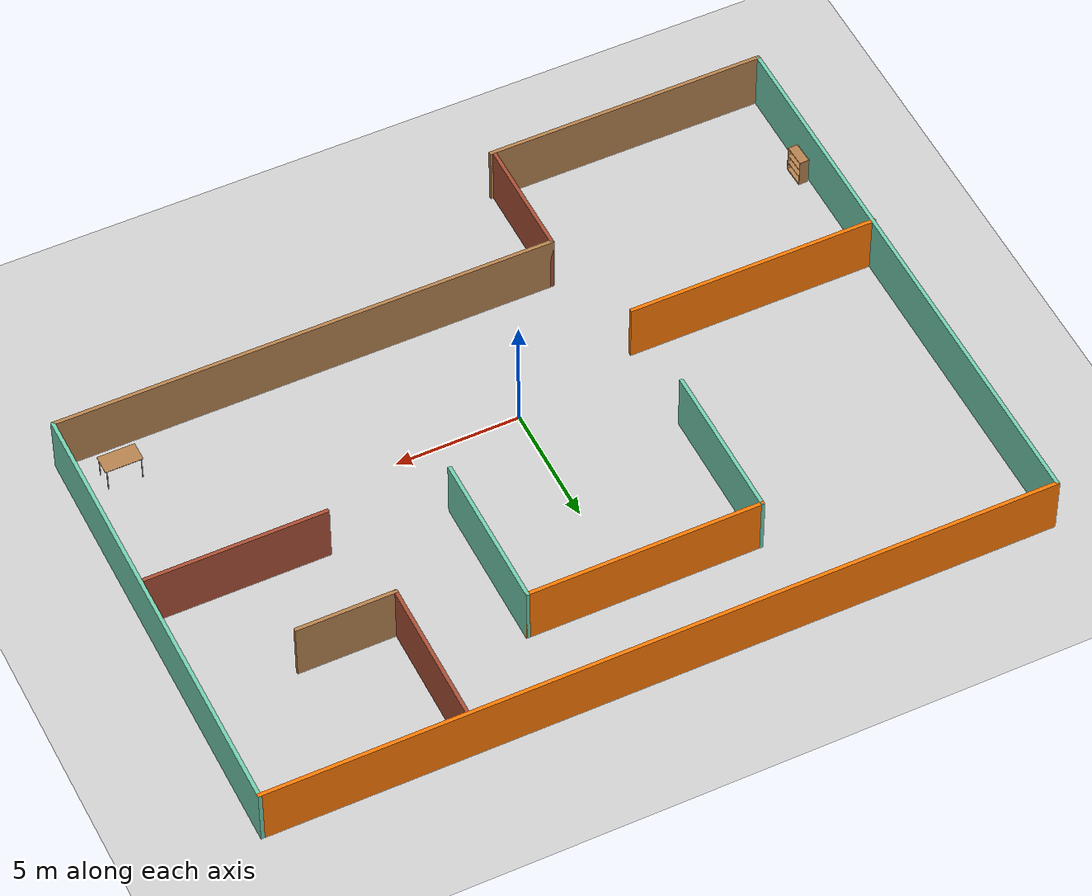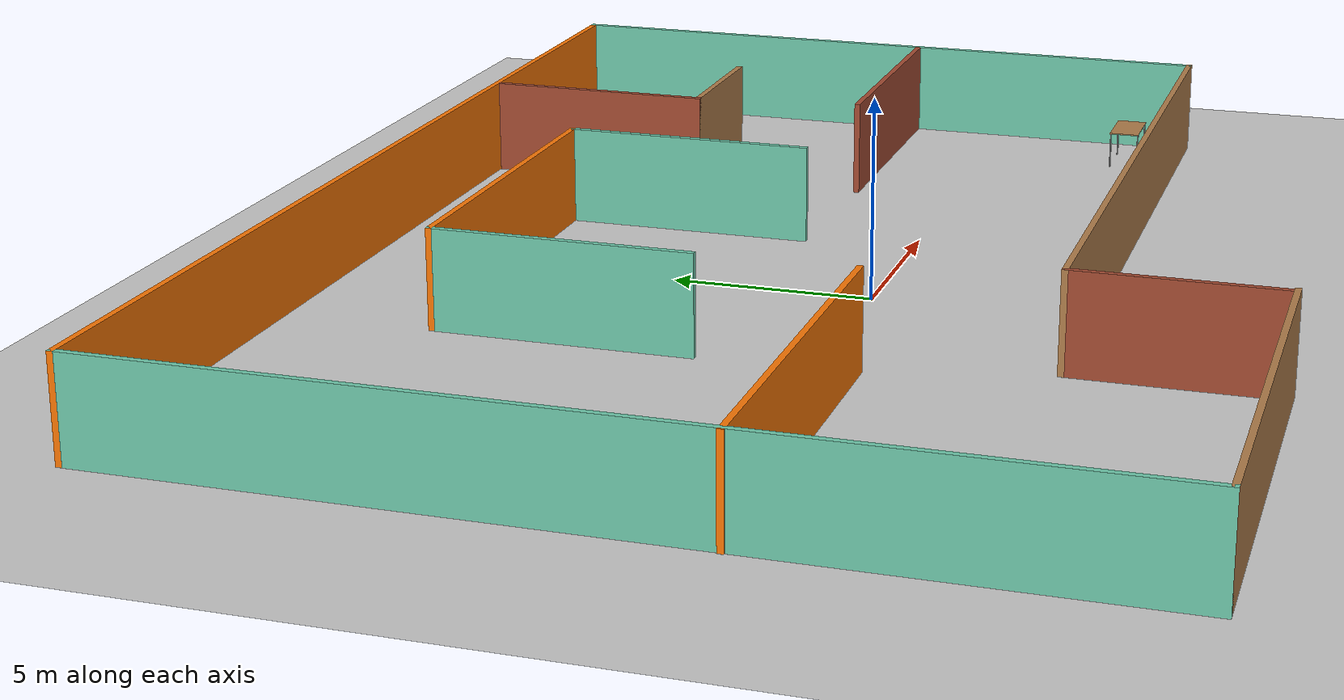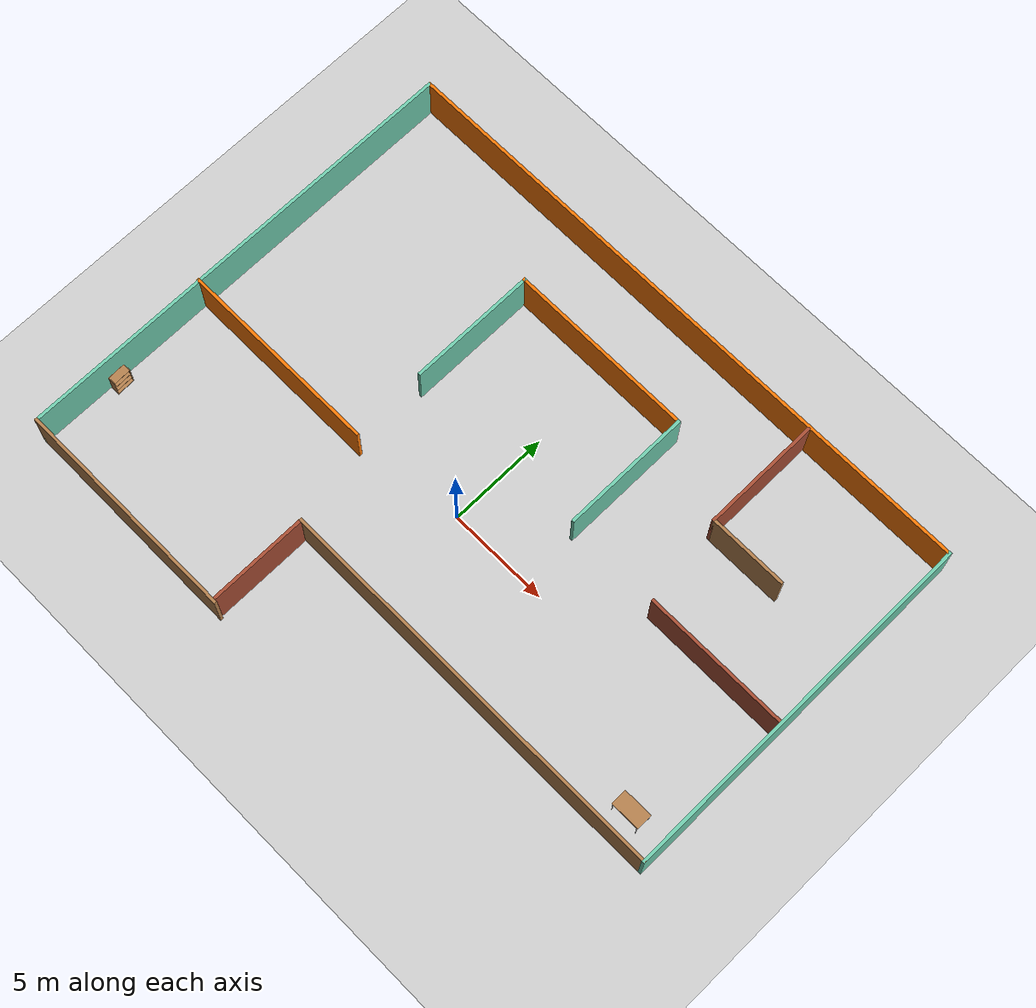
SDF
<sdf version="1.7">
 <world name="default">
  <light name="sun" type="directional">
   <pose>0 0 10 0 -0 0</pose>
   <diffuse>0.8 0.8 0.8 1</diffuse>
   <specular>0.2 0.2 0.2 1</specular>
   <attenuation>
    <range>1000</range>
    <constant>0.9</constant>
    <linear>0.01</linear>
    <quadratic>0.001</quadratic>
   </attenuation>
   <direction>-0.5 0.1 -0.9</direction>
   <spot><inner_angle>0</inner_angle><outer_angle>0</outer_angle><falloff>0</falloff></spot>
  </light>
  <model name="ground_plane">
   <static>1</static>
   <link name="link">
    <collision name="collision">
     <geometry><plane><normal>0 0 1</normal><size>100 100</size></plane></geometry>
     <surface>
      <contact><collide_bitmask>65535</collide_bitmask></contact>
      <friction><ode><mu>100</mu><mu2>50</mu2></ode></friction>
     </surface>
    </collision>
    <visual name="visual">
     <cast_shadows>0</cast_shadows>
     <geometry><plane><normal>0 0 1</normal><size>100 100</size></plane></geometry>
     <material>
      <script><uri>file://media/materials/scripts/gazebo.material</uri><name>Gazebo/Grey</name></script>
     </material>
    </visual>
   </link>
  </model>
  <gravity>0 0 -9.8</gravity>
  <magnetic_field>6e-06 2.3e-05 -4.2e-05</magnetic_field>
  <atmosphere type="adiabatic"/>
  <physics type="ode">
   <max_step_size>0.001</max_step_size>
   <real_time_factor>1</real_time_factor>
   <real_time_update_rate>1000</real_time_update_rate>
  </physics>
  <scene><ambient>0.4 0.4 0.4 1</ambient><background>0.7 0.7 0.7 1</background><shadows>1</shadows></scene>
  <spherical_coordinates>
   <surface_model>EARTH_WGS84</surface_model>
   <latitude_deg>0</latitude_deg>
   <longitude_deg>0</longitude_deg>
   <elevation>0</elevation>
   <heading_deg>0</heading_deg>
  </spherical_coordinates>
  <model name="new5">
   <pose>0.493495 1.35097 0 0 -0 0</pose>
   <link name="Wall_0">
    <collision name="Wall_0_Collision">
     <geometry><box><size>20.25 0.15 2.5</size></box></geometry>
     <pose>0 0 1.25 0 -0 0</pose>
    </collision>
    <visual name="Wall_0_Visual">
     <pose>0 0 1.25 0 -0 0</pose>
     <geometry><box><size>20.25 0.15 2.5</size></box></geometry>
     <material>
      <script><uri>file://media/materials/scripts/gazebo.material</uri><name>Gazebo/Wood</name></script>
      <ambient>1 1 1 1</ambient>
     </material>
     <meta><layer>0</layer></meta>
    </visual>
    <pose>5.64376 -6.675 0 0 -0 0</pose>
   </link>
   <link name="Wall_1">
    <collision name="Wall_1_Collision">
     <geometry><box><size>18.5 0.15 2.5</size></box></geometry>
     <pose>0 0 1.25 0 -0 0</pose>
    </collision>
    <visual name="Wall_1_Visual">
     <pose>0 0 1.25 0 -0 0</pose>
     <geometry><box><size>18.5 0.15 2.5</size></box></geometry>
     <material>
      <script><uri>file://media/materials/scripts/gazebo.material</uri><name>Gazebo/Grey</name></script>
      <ambient>0.435294 0.796078 0.67451 1</ambient>
     </material>
     <meta><layer>0</layer></meta>
    </visual>
    <pose>15.6938 2.5 0 0 -0 1.5708</pose>
   </link>
   <link name="Wall_10">
    <collision name="Wall_10_Collision">
     <geometry><box><size>4 0.15 2.5</size></box></geometry>
     <pose>0 0 1.25 0 -0 0</pose>
    </collision>
    <visual name="Wall_10_Visual">
     <pose>0 0 1.25 0 -0 0</pose>
     <geometry><box><size>4 0.15 2.5</size></box></geometry>
     <material>
      <script><uri>file://media/materials/scripts/gazebo.material</uri><name>Gazebo/Wood</name></script>
      <ambient>1 1 1 1</ambient>
     </material>
     <meta><layer>0</layer></meta>
    </visual>
    <pose>9.68998 5.72567 0 0 -0 0</pose>
   </link>
   <link name="Wall_12">
    <collision name="Wall_12_Collision">
     <geometry><box><size>9.5 0.15 2.5</size></box></geometry>
     <pose>0 0 1.25 0 -0 0</pose>
    </collision>
    <visual name="Wall_12_Visual">
     <pose>0 0 1.25 0 -0 0</pose>
     <geometry><box><size>9.5 0.15 2.5</size></box></geometry>
     <material>
      <script><uri>file://media/materials/scripts/gazebo.material</uri><name>Gazebo/Grey</name></script>
      <ambient>0.996078 0.47451 0.0196078 1</ambient>
     </material>
     <meta><layer>0</layer></meta>
    </visual>
    <pose>-1.03241 7.86062 0 0 -0 0</pose>
   </link>
   <link name="Wall_13">
    <collision name="Wall_13_Collision">
     <geometry><box><size>6.5 0.15 2.5</size></box></geometry>
     <pose>0 0 1.25 0 -0 0</pose>
    </collision>
    <visual name="Wall_13_Visual">
     <pose>0 0 1.25 0 -0 0</pose>
     <geometry><box><size>6.5 0.15 2.5</size></box></geometry>
     <material>
      <script><uri>file://media/materials/scripts/gazebo.material</uri><name>Gazebo/Grey</name></script>
      <ambient>0.435294 0.796078 0.67451 1</ambient>
     </material>
     <meta><layer>0</layer></meta>
    </visual>
    <pose>3.64259 4.68562 0 0 -0 -1.5708</pose>
   </link>
   <link name="Wall_15">
    <collision name="Wall_15_Collision">
     <geometry><box><size>7.25 0.15 2.5</size></box></geometry>
     <pose>0 0 1.25 0 -0 0</pose>
    </collision>
    <visual name="Wall_15_Visual">
     <pose>0 0 1.25 0 -0 0</pose>
     <geometry><box><size>7.25 0.15 2.5</size></box></geometry>
     <material>
      <script><uri>file://media/materials/scripts/gazebo.material</uri><name>Gazebo/Bricks</name></script>
      <ambient>1 1 1 1</ambient>
     </material>
     <meta><layer>0</layer></meta>
    </visual>
    <pose>12.0011 1.35097 0 0 -0 0</pose>
   </link>
   <link name="Wall_18">
    <collision name="Wall_18_Collision">
     <geometry><box><size>10.25 0.15 2.5</size></box></geometry>
     <pose>0 0 1.25 0 -0 0</pose>
    </collision>
    <visual name="Wall_18_Visual">
     <pose>0 0 1.25 0 -0 0</pose>
     <geometry><box><size>10.25 0.15 2.5</size></box></geometry>
     <material>
      <script><uri>file://media/materials/scripts/gazebo.material</uri><name>Gazebo/Grey</name></script>
      <ambient>0.996078 0.47451 0.0196078 1</ambient>
     </material>
     <meta><layer>0</layer></meta>
    </visual>
    <pose>-10.6438 -2.33775 0 0 -0 0</pose>
   </link>
   <link name="Wall_2">
    <collision name="Wall_2_Collision">
     <geometry><box><size>31.5 0.15 2.5</size></box></geometry>
     <pose>0 0 1.25 0 -0 0</pose>
    </collision>
    <visual name="Wall_2_Visual">
     <pose>0 0 1.25 0 -0 0</pose>
     <geometry><box><size>31.5 0.15 2.5</size></box></geometry>
     <material>
      <script><uri>file://media/materials/scripts/gazebo.material</uri><name>Gazebo/Grey</name></script>
      <ambient>0.996078 0.47451 0.0196078 1</ambient>
     </material>
     <meta><layer>0</layer></meta>
    </visual>
    <pose>0.018757 11.675 0 0 -0 3.14159</pose>
   </link>
   <link name="Wall_20">
    <collision name="Wall_20_Collision">
     <geometry><box><size>6.5 0.15 2.5</size></box></geometry>
     <pose>0 0 1.25 0 -0 0</pose>
    </collision>
    <visual name="Wall_20_Visual">
     <pose>0 0 1.25 0 -0 0</pose>
     <geometry><box><size>6.5 0.15 2.5</size></box></geometry>
     <material>
      <script><uri>file://media/materials/scripts/gazebo.material</uri><name>Gazebo/Grey</name></script>
      <ambient>0.435294 0.796078 0.67451 1</ambient>
     </material>
     <meta><layer>0</layer></meta>
    </visual>
    <pose>-5.70741 4.68562 0 0 -0 -1.5708</pose>
   </link>
   <link name="Wall_3">
    <collision name="Wall_3_Collision">
     <geometry><box><size>23.5 0.15 2.5</size></box></geometry>
     <pose>0 0 1.25 0 -0 0</pose>
    </collision>
    <visual name="Wall_3_Visual">
     <pose>0 0 1.25 0 -0 0</pose>
     <geometry><box><size>23.5 0.15 2.5</size></box></geometry>
     <material>
      <script><uri>file://media/materials/scripts/gazebo.material</uri><name>Gazebo/Grey</name></script>
      <ambient>0.435294 0.796078 0.67451 1</ambient>
     </material>
     <meta><layer>0</layer></meta>
    </visual>
    <pose>-15.6562 -0 0 0 -0 -1.5708</pose>
   </link>
   <link name="Wall_4">
    <collision name="Wall_4_Collision">
     <geometry><box><size>11.5 0.15 2.5</size></box></geometry>
     <pose>0 0 1.25 0 -0 0</pose>
    </collision>
    <visual name="Wall_4_Visual">
     <pose>0 0 1.25 0 -0 0</pose>
     <geometry><box><size>11.5 0.15 2.5</size></box></geometry>
     <material>
      <script><uri>file://media/materials/scripts/gazebo.material</uri><name>Gazebo/Wood</name></script>
      <ambient>1 1 1 1</ambient>
     </material>
     <meta><layer>0</layer></meta>
    </visual>
    <pose>-9.98124 -11.675 0 0 -0 0</pose>
   </link>
   <link name="Wall_7">
    <collision name="Wall_7_Collision">
     <geometry><box><size>5 0.15 2.5</size></box></geometry>
     <pose>0 0 1.25 0 -0 0</pose>
    </collision>
    <visual name="Wall_7_Visual">
     <pose>0 0 1.25 0 -0 0</pose>
     <geometry><box><size>5 0.15 2.5</size></box></geometry>
     <material>
      <script><uri>file://media/materials/scripts/gazebo.material</uri><name>Gazebo/Bricks</name></script>
      <ambient>1 1 1 1</ambient>
     </material>
     <meta><layer>0</layer></meta>
    </visual>
    <pose>-4.40624 -9.1 0 0 -0 -1.5708</pose>
   </link>
   <link name="Wall_9">
    <collision name="Wall_9_Collision">
     <geometry><box><size>6 0.15 2.5</size></box></geometry>
     <pose>0 0 1.25 0 -0 0</pose>
    </collision>
    <visual name="Wall_9_Visual">
     <pose>0 0 1.25 0 -0 0</pose>
     <geometry><box><size>6 0.15 2.5</size></box></geometry>
     <material>
      <script><uri>file://media/materials/scripts/gazebo.material</uri><name>Gazebo/Bricks</name></script>
      <ambient>1 1 1 1</ambient>
     </material>
     <meta><layer>0</layer></meta>
    </visual>
    <pose>7.76498 8.65067 0 0 -0 -1.5708</pose>
   </link>
   <static>1</static>
  </model>
  <model name="table">
   <static>1</static>
   <link name="link">
    <collision name="surface">
     <pose>0 0 1 0 -0 0</pose>
     <geometry><box><size>1.5 0.8 0.03</size></box></geometry>
     <surface><friction><ode><mu>0.6</mu><mu2>0.6</mu2></ode></friction></surface>
    </collision>
    <visual name="visual1">
     <pose>0 0 1 0 -0 0</pose>
     <geometry><box><size>1.5 0.8 0.03</size></box></geometry>
     <material>
      <script><uri>file://media/materials/scripts/gazebo.material</uri><name>Gazebo/Wood</name></script>
     </material>
    </visual>
    <collision name="front_left_leg">
     <pose>0.68 0.38 0.5 0 -0 0</pose>
     <geometry><cylinder><radius>0.02</radius><length>1</length></cylinder></geometry>
    </collision>
    <visual name="front_left_leg">
     <pose>0.68 0.38 0.5 0 -0 0</pose>
     <geometry><cylinder><radius>0.02</radius><length>1</length></cylinder></geometry>
     <material>
      <script><uri>file://media/materials/scripts/gazebo.material</uri><name>Gazebo/Grey</name></script>
     </material>
    </visual>
    <collision name="front_right_leg">
     <pose>0.68 -0.38 0.5 0 -0 0</pose>
     <geometry><cylinder><radius>0.02</radius><length>1</length></cylinder></geometry>
    </collision>
    <visual name="front_right_leg">
     <pose>0.68 -0.38 0.5 0 -0 0</pose>
     <geometry><cylinder><radius>0.02</radius><length>1</length></cylinder></geometry>
     <material>
      <script><uri>file://media/materials/scripts/gazebo.material</uri><name>Gazebo/Grey</name></script>
     </material>
    </visual>
    <collision name="back_right_leg">
     <pose>-0.68 -0.38 0.5 0 -0 0</pose>
     <geometry><cylinder><radius>0.02</radius><length>1</length></cylinder></geometry>
    </collision>
    <visual name="back_right_leg">
     <pose>-0.68 -0.38 0.5 0 -0 0</pose>
     <geometry><cylinder><radius>0.02</radius><length>1</length></cylinder></geometry>
     <material>
      <script><uri>file://media/materials/scripts/gazebo.material</uri><name>Gazebo/Grey</name></script>
     </material>
    </visual>
    <collision name="back_left_leg">
     <pose>-0.68 0.38 0.5 0 -0 0</pose>
     <geometry><cylinder><radius>0.02</radius><length>1</length></cylinder></geometry>
    </collision>
    <visual name="back_left_leg">
     <pose>-0.68 0.38 0.5 0 -0 0</pose>
     <geometry><cylinder><radius>0.02</radius><length>1</length></cylinder></geometry>
     <material>
      <script><uri>file://media/materials/scripts/gazebo.material</uri><name>Gazebo/Grey</name></script>
     </material>
    </visual>
   </link>
   <pose>14.2463 -3.93037 0 0 -0 0</pose>
  </model>
  <model name="bookshelf">
   <static>1</static>
   <link name="link">
    <inertial><mass>1</mass></inertial>
    <collision name="back">
     <pose>0 0.005 0.6 0 -0 0</pose>
     <geometry><box><size>0.9 0.01 1.2</size></box></geometry>
    </collision>
    <visual name="visual1">
     <pose>0 0.005 0.6 0 -0 0</pose>
     <geometry><box><size>0.9 0.01 1.2</size></box></geometry>
     <material>
      <script><uri>file://media/materials/scripts/gazebo.material</uri><name>Gazebo/Wood</name></script>
     </material>
    </visual>
    <collision name="left_side">
     <pose>0.45 -0.195 0.6 0 -0 0</pose>
     <geometry><box><size>0.02 0.4 1.2</size></box></geometry>
    </collision>
    <visual name="visual2">
     <pose>0.45 -0.195 0.6 0 -0 0</pose>
     <geometry><box><size>0.02 0.4 1.2</size></box></geometry>
     <material>
      <script><uri>file://media/materials/scripts/gazebo.material</uri><name>Gazebo/Wood</name></script>
     </material>
    </visual>
    <collision name="right_side">
     <pose>-0.45 -0.195 0.6 0 -0 0</pose>
     <geometry><box><size>0.02 0.4 1.2</size></box></geometry>
    </collision>
    <visual name="visual3">
     <pose>-0.45 -0.195 0.6 0 -0 0</pose>
     <geometry><box><size>0.02 0.4 1.2</size></box></geometry>
     <material>
      <script><uri>file://media/materials/scripts/gazebo.material</uri><name>Gazebo/Wood</name></script>
     </material>
    </visual>
    <collision name="bottom">
     <pose>0 -0.195 0.03 0 -0 0</pose>
     <geometry><box><size>0.88 0.4 0.06</size></box></geometry>
    </collision>
    <visual name="visual4">
     <pose>0 -0.195 0.03 0 -0 0</pose>
     <geometry><box><size>0.88 0.4 0.06</size></box></geometry>
     <material>
      <script><uri>file://media/materials/scripts/gazebo.material</uri><name>Gazebo/Wood</name></script>
     </material>
    </visual>
    <collision name="top">
     <pose>0 -0.195 1.19 0 -0 0</pose>
     <geometry><box><size>0.88 0.4 0.02</size></box></geometry>
    </collision>
    <visual name="visual5">
     <pose>0 -0.195 1.19 0 -0 0</pose>
     <geometry><box><size>0.88 0.4 0.02</size></box></geometry>
     <material>
      <script><uri>file://media/materials/scripts/gazebo.material</uri><name>Gazebo/Wood</name></script>
     </material>
    </visual>
    <collision name="low_shelf">
     <pose>0 -0.195 0.43 0 -0 0</pose>
     <geometry><box><size>0.88 0.4 0.02</size></box></geometry>
    </collision>
    <visual name="visual6">
     <pose>0 -0.195 0.43 0 -0 0</pose>
     <geometry><box><size>0.88 0.4 0.02</size></box></geometry>
     <material>
      <script><uri>file://media/materials/scripts/gazebo.material</uri><name>Gazebo/Wood</name></script>
     </material>
    </visual>
    <collision name="high_shelf">
     <pose>0 -0.195 0.8 0 -0 0</pose>
     <geometry><box><size>0.88 0.4 0.02</size></box></geometry>
    </collision>
    <visual name="visual7">
     <pose>0 -0.195 0.8 0 -0 0</pose>
     <geometry><box><size>0.88 0.4 0.02</size></box></geometry>
     <material>
      <script><uri>file://media/materials/scripts/gazebo.material</uri><name>Gazebo/Wood</name></script>
     </material>
    </visual>
   </link>
   <pose>-15.0099 -6.21309 0 0 -0 1.60013</pose>
  </model>
 </world>
</sdf>
